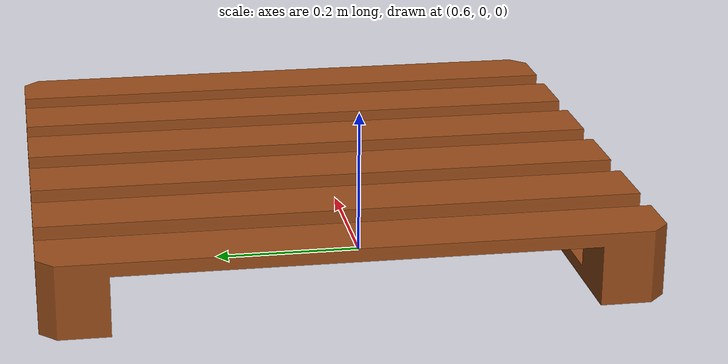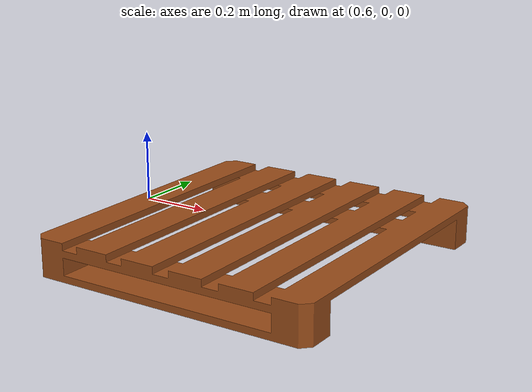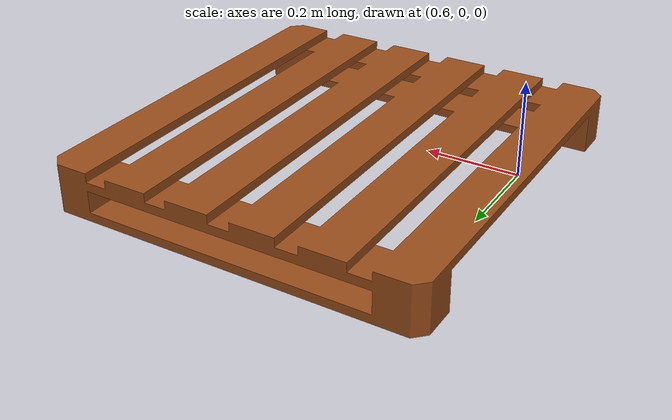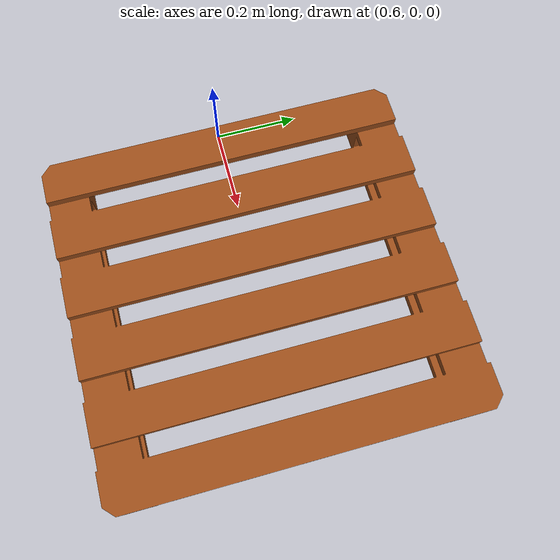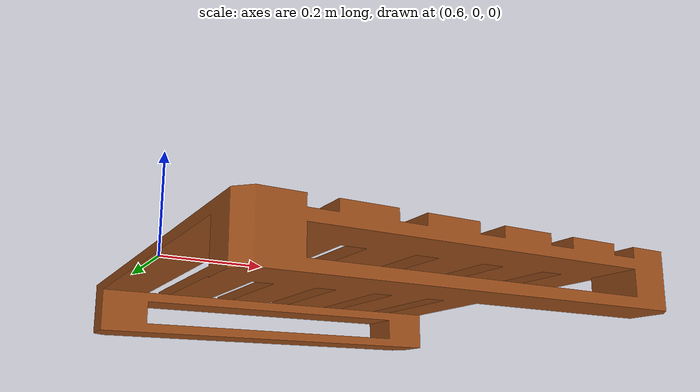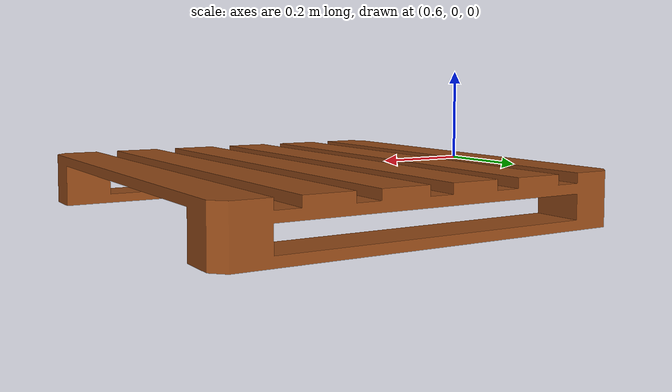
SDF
<?xml version="1.0" ?>
<sdf version="1.5">
  <model name="pallet">
    <static>false</static>

    <link name="link">
      <pose>1 0 0 0 0 0</pose>
      <collision name="collision">
        <geometry>
            <mesh>
              <uri>
                mesh/pallet.stl
              </uri>
              <scale>
                0.1 0.1 0.1
              </scale>
            </mesh>
        </geometry>
      </collision>

      <visual name="visual">
        <cast_shadows>true</cast_shadows>
        <geometry>
            <mesh>
              <uri>
                mesh/pallet.stl
              </uri>
              <scale>
                0.1 0.1 0.1
              </scale>
            </mesh>
        </geometry>
        <material>
          <ambient>0.6 0.3 0.1 1</ambient>
          <diffuse>0.6 0.3 0.1 1</diffuse>
        </material>
      </visual>
    </link>
  </model>
</sdf>
